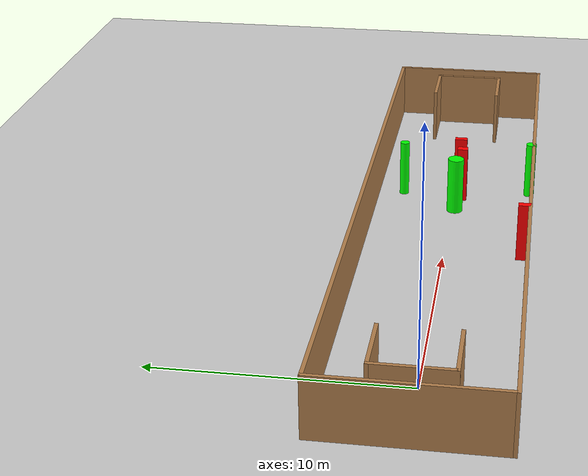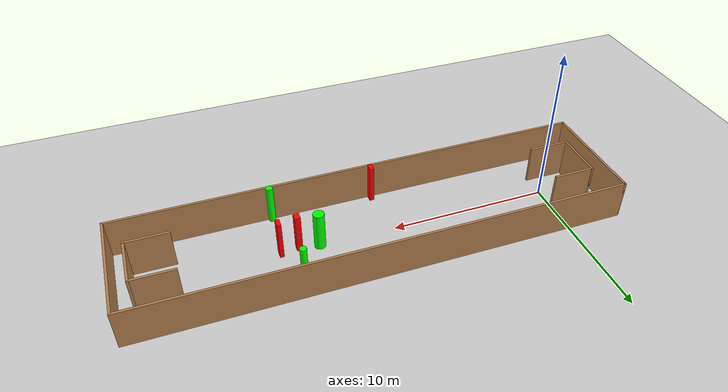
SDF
<sdf version="1.7">
 <world name="default">
  <light name="sun" type="directional">
   <pose>0 0 10 0 -0 0</pose>
   <diffuse>0.8 0.8 0.8 1</diffuse>
   <specular>0.2 0.2 0.2 1</specular>
   <attenuation>
    <range>1000</range>
    <constant>0.9</constant>
    <linear>0.01</linear>
    <quadratic>0.001</quadratic>
   </attenuation>
   <direction>-0.5 0.1 -0.9</direction>
   <spot><inner_angle>0</inner_angle><outer_angle>0</outer_angle><falloff>0</falloff></spot>
  </light>
  <model name="ground_plane">
   <static>1</static>
   <link name="link">
    <collision name="collision">
     <geometry><plane><normal>0 0 1</normal><size>100 100</size></plane></geometry>
     <surface>
      <contact><collide_bitmask>65535</collide_bitmask></contact>
      <friction><ode><mu>100</mu><mu2>50</mu2></ode></friction>
     </surface>
    </collision>
    <visual name="visual">
     <cast_shadows>0</cast_shadows>
     <geometry><plane><normal>0 0 1</normal><size>100 100</size></plane></geometry>
     <material>
      <script><uri>file://media/materials/scripts/gazebo.material</uri><name>Gazebo/Grey</name></script>
     </material>
    </visual>
   </link>
  </model>
  <gravity>0 0 -9.8</gravity>
  <magnetic_field>6e-06 2.3e-05 -4.2e-05</magnetic_field>
  <atmosphere type="adiabatic"/>
  <physics type="ode">
   <max_step_size>0.001</max_step_size>
   <real_time_factor>1</real_time_factor>
   <real_time_update_rate>1000</real_time_update_rate>
  </physics>
  <scene><ambient>0.4 0.4 0.4 1</ambient><background>0.7 0.7 0.7 1</background><shadows>1</shadows></scene>
  <spherical_coordinates>
   <surface_model>EARTH_WGS84</surface_model>
   <latitude_deg>0</latitude_deg>
   <longitude_deg>0</longitude_deg>
   <elevation>0</elevation>
   <heading_deg>0</heading_deg>
  </spherical_coordinates>
  <model name="my_base_walls">
   <link name="Wall_0">
    <collision name="Wall_0_Collision">
     <geometry><box><size>7.15 0.15 2.5</size></box></geometry>
     <pose>0 0 1.25 0 -0 0</pose>
    </collision>
    <visual name="Wall_0_Visual">
     <pose>0 0 1.25 0 -0 0</pose>
     <geometry><box><size>7.15 0.15 2.5</size></box></geometry>
     <material>
      <script><uri>file://media/materials/scripts/gazebo.material</uri><name>Gazebo/Wood</name></script>
      <ambient>1 1 1 1</ambient>
     </material>
     <meta><layer>0</layer></meta>
    </visual>
    <pose>-15 0 0 0 -0 1.5708</pose>
   </link>
   <link name="Wall_10">
    <collision name="Wall_10_Collision">
     <geometry><box><size>2.65 0.15 2.5</size></box></geometry>
     <pose>0 0 1.25 0 -0 0</pose>
    </collision>
    <visual name="Wall_10_Visual">
     <pose>0 0 1.25 0 -0 0</pose>
     <geometry><box><size>2.65 0.15 2.5</size></box></geometry>
     <material>
      <script><uri>file://media/materials/scripts/gazebo.material</uri><name>Gazebo/Wood</name></script>
      <ambient>1 1 1 1</ambient>
     </material>
     <meta><layer>0</layer></meta>
    </visual>
    <pose>-12.75 -1.5 0 0 -0 0</pose>
   </link>
   <link name="Wall_12">
    <collision name="Wall_12_Collision">
     <geometry><box><size>2.65 0.15 2.5</size></box></geometry>
     <pose>0 0 1.25 0 -0 0</pose>
    </collision>
    <visual name="Wall_12_Visual">
     <pose>0 0 1.25 0 -0 0</pose>
     <geometry><box><size>2.65 0.15 2.5</size></box></geometry>
     <material>
      <script><uri>file://media/materials/scripts/gazebo.material</uri><name>Gazebo/Wood</name></script>
      <ambient>1 1 1 1</ambient>
     </material>
     <meta><layer>0</layer></meta>
    </visual>
    <pose>-12.75 1.5 0 0 -0 0</pose>
   </link>
   <link name="Wall_14">
    <collision name="Wall_14_Collision">
     <geometry><box><size>3.15 0.15 2.5</size></box></geometry>
     <pose>0 0 1.25 0 -0 0</pose>
    </collision>
    <visual name="Wall_14_Visual">
     <pose>0 0 1.25 0 -0 0</pose>
     <geometry><box><size>3.15 0.15 2.5</size></box></geometry>
     <material>
      <script><uri>file://media/materials/scripts/gazebo.material</uri><name>Gazebo/Wood</name></script>
      <ambient>1 1 1 1</ambient>
     </material>
     <meta><layer>0</layer></meta>
    </visual>
    <pose>14 0 0 0 -0 -1.5708</pose>
   </link>
   <link name="Wall_15">
    <collision name="Wall_15_Collision">
     <geometry><box><size>2.65 0.15 2.5</size></box></geometry>
     <pose>0 0 1.25 0 -0 0</pose>
    </collision>
    <visual name="Wall_15_Visual">
     <pose>0 0 1.25 0 -0 0</pose>
     <geometry><box><size>2.65 0.15 2.5</size></box></geometry>
     <material>
      <script><uri>file://media/materials/scripts/gazebo.material</uri><name>Gazebo/Wood</name></script>
      <ambient>1 1 1 1</ambient>
     </material>
     <meta><layer>0</layer></meta>
    </visual>
    <pose>12.75 -1.5 0 0 -0 3.14159</pose>
   </link>
   <link name="Wall_17">
    <collision name="Wall_17_Collision">
     <geometry><box><size>2.65 0.15 2.5</size></box></geometry>
     <pose>0 0 1.25 0 -0 0</pose>
    </collision>
    <visual name="Wall_17_Visual">
     <pose>0 0 1.25 0 -0 0</pose>
     <geometry><box><size>2.65 0.15 2.5</size></box></geometry>
     <material>
      <script><uri>file://media/materials/scripts/gazebo.material</uri><name>Gazebo/Wood</name></script>
      <ambient>1 1 1 1</ambient>
     </material>
     <meta><layer>0</layer></meta>
    </visual>
    <pose>12.75 1.5 0 0 -0 3.14159</pose>
   </link>
   <link name="Wall_2">
    <collision name="Wall_2_Collision">
     <geometry><box><size>30.15 0.15 2.5</size></box></geometry>
     <pose>0 0 1.25 0 -0 0</pose>
    </collision>
    <visual name="Wall_2_Visual">
     <pose>0 0 1.25 0 -0 0</pose>
     <geometry><box><size>30.15 0.15 2.5</size></box></geometry>
     <material>
      <script><uri>file://media/materials/scripts/gazebo.material</uri><name>Gazebo/Wood</name></script>
      <ambient>1 1 1 1</ambient>
     </material>
     <meta><layer>0</layer></meta>
    </visual>
    <pose>-0 -3.5 0 0 -0 0</pose>
   </link>
   <link name="Wall_4">
    <collision name="Wall_4_Collision">
     <geometry><box><size>30.15 0.15 2.5</size></box></geometry>
     <pose>0 0 1.25 0 -0 0</pose>
    </collision>
    <visual name="Wall_4_Visual">
     <pose>0 0 1.25 0 -0 0</pose>
     <geometry><box><size>30.15 0.15 2.5</size></box></geometry>
     <material>
      <script><uri>file://media/materials/scripts/gazebo.material</uri><name>Gazebo/Wood</name></script>
      <ambient>1 1 1 1</ambient>
     </material>
     <meta><layer>0</layer></meta>
    </visual>
    <pose>-0 3.5 0 0 -0 0</pose>
   </link>
   <link name="Wall_6">
    <collision name="Wall_6_Collision">
     <geometry><box><size>7.15 0.15 2.5</size></box></geometry>
     <pose>0 0 1.25 0 -0 0</pose>
    </collision>
    <visual name="Wall_6_Visual">
     <pose>0 0 1.25 0 -0 0</pose>
     <geometry><box><size>7.15 0.15 2.5</size></box></geometry>
     <material>
      <script><uri>file://media/materials/scripts/gazebo.material</uri><name>Gazebo/Wood</name></script>
      <ambient>1 1 1 1</ambient>
     </material>
     <meta><layer>0</layer></meta>
    </visual>
    <pose>15 0 0 0 -0 -1.5708</pose>
   </link>
   <link name="Wall_9">
    <collision name="Wall_9_Collision">
     <geometry><box><size>3.15 0.15 2.5</size></box></geometry>
     <pose>0 0 1.25 0 -0 0</pose>
    </collision>
    <visual name="Wall_9_Visual">
     <pose>0 0 1.25 0 -0 0</pose>
     <geometry><box><size>3.15 0.15 2.5</size></box></geometry>
     <material>
      <script><uri>file://media/materials/scripts/gazebo.material</uri><name>Gazebo/Wood</name></script>
      <ambient>1 1 1 1</ambient>
     </material>
     <meta><layer>0</layer></meta>
    </visual>
    <pose>-14 0 0 0 -0 -1.5708</pose>
   </link>
   <static>1</static>
   <pose>11.5 0 0 0 -0 0</pose>
  </model>
  <model name="cylinder1">
   <static>1</static>
   <link name="link">
    <inertial>
     <mass>1</mass>
     <inertia><ixx>0.5</ixx><ixy>0</ixy><ixz>0</ixz><iyy>0.5</iyy><iyz>0</iyz><izz>1</izz></inertia>
    </inertial>
    <collision name="collision">
     <geometry><cylinder><radius>0.34758516835304243</radius><length>2.5</length></cylinder></geometry>
    </collision>
    <visual name="visual">
     <geometry><cylinder><radius>0.34758516835304243</radius><length>2.5</length></cylinder></geometry>
     <material>
      <ambient>0 1 0 1</ambient>
      <diffuse>0 1 0 1</diffuse>
      <specular>0.1 0.1 0.1 1</specular>
      <emissive>0 0 0 0</emissive>
     </material>
    </visual>
   </link>
   <pose>14.729074441941448 -0.13380332849077714 1.25 0 0 0</pose>
  </model>
  <model name="cylinder2">
   <static>1</static>
   <link name="link">
    <inertial>
     <mass>1</mass>
     <inertia><ixx>0.5</ixx><ixy>0</ixy><ixz>0</ixz><iyy>0.5</iyy><iyz>0</iyz><izz>1</izz></inertia>
    </inertial>
    <collision name="collision">
     <geometry><cylinder><radius>0.22268506019365977</radius><length>2.5</length></cylinder></geometry>
    </collision>
    <visual name="visual">
     <geometry><cylinder><radius>0.22268506019365977</radius><length>2.5</length></cylinder></geometry>
     <material>
      <ambient>0 1 0 1</ambient>
      <diffuse>0 1 0 1</diffuse>
      <specular>0.1 0.1 0.1 1</specular>
      <emissive>0 0 0 0</emissive>
     </material>
    </visual>
   </link>
   <pose>16.856639026901334 -3.3800767153645586 1.25 0 0 0</pose>
  </model>
  <model name="cylinder3">
   <static>1</static>
   <link name="link">
    <inertial>
     <mass>1</mass>
     <inertia><ixx>0.5</ixx><ixy>0</ixy><ixz>0</ixz><iyy>0.5</iyy><iyz>0</iyz><izz>1</izz></inertia>
    </inertial>
    <collision name="collision">
     <geometry><cylinder><radius>0.2049648760522799</radius><length>2.5</length></cylinder></geometry>
    </collision>
    <visual name="visual">
     <geometry><cylinder><radius>0.2049648760522799</radius><length>2.5</length></cylinder></geometry>
     <material>
      <ambient>0 1 0 1</ambient>
      <diffuse>0 1 0 1</diffuse>
      <specular>0.1 0.1 0.1 1</specular>
      <emissive>0 0 0 0</emissive>
     </material>
    </visual>
   </link>
   <pose>16.305528475135667 2.3009287845299102 1.25 0 0 0</pose>
  </model>
  <model name="box1">
   <static>1</static>
   <link name="link">
    <inertial>
     <mass>1</mass>
     <inertia><ixx>0.083</ixx><ixy>0</ixy><ixz>0</ixz><iyy>0.083</iyy><iyz>0</iyz><izz>0.083</izz></inertia>
    </inertial>
    <collision name="collision">
     <geometry><box><size>0.2949059549842649 0.519116523350687 2.5</size></box></geometry>
    </collision>
    <visual name="visual">
     <geometry><box><size>0.2949059549842649 0.519116523350687 2.5</size></box></geometry>
     <material>
      <ambient>1 0 0 1</ambient>
      <diffuse>1 0 0 1</diffuse>
      <specular>0.1 0.1 0.1 1</specular>
      <emissive>0 0 0 0</emissive>
     </material>
    </visual>
    <sensor name="my_contact" type="contact">
     <contact><collision>box_collision</collision><topic>__default_topic__</topic></contact>
    </sensor>
   </link>
   <pose>10.419603867245252 -3.269343047286985 1.25 0 0 0</pose>
  </model>
  <model name="box2">
   <static>1</static>
   <link name="link">
    <inertial>
     <mass>1</mass>
     <inertia><ixx>0.083</ixx><ixy>0</ixy><ixz>0</ixz><iyy>0.083</iyy><iyz>0</iyz><izz>0.083</izz></inertia>
    </inertial>
    <collision name="collision">
     <geometry><box><size>0.34876112813668714 0.4590473481131126 2.5</size></box></geometry>
    </collision>
    <visual name="visual">
     <geometry><box><size>0.34876112813668714 0.4590473481131126 2.5</size></box></geometry>
     <material>
      <ambient>1 0 0 1</ambient>
      <diffuse>1 0 0 1</diffuse>
      <specular>0.1 0.1 0.1 1</specular>
      <emissive>0 0 0 0</emissive>
     </material>
    </visual>
    <sensor name="my_contact" type="contact">
     <contact><collision>box_collision</collision><topic>__default_topic__</topic></contact>
    </sensor>
   </link>
   <pose>15.962553911685474 -0.3457049799043892 1.25 0 0 0</pose>
  </model>
  <model name="box3">
   <static>1</static>
   <link name="link">
    <inertial>
     <mass>1</mass>
     <inertia><ixx>0.083</ixx><ixy>0</ixy><ixz>0</ixz><iyy>0.083</iyy><iyz>0</iyz><izz>0.083</izz></inertia>
    </inertial>
    <collision name="collision">
     <geometry><box><size>0.2556918288046065 0.5435147425124416 2.5</size></box></geometry>
    </collision>
    <visual name="visual">
     <geometry><box><size>0.2556918288046065 0.5435147425124416 2.5</size></box></geometry>
     <material>
      <ambient>1 0 0 1</ambient>
      <diffuse>1 0 0 1</diffuse>
      <specular>0.1 0.1 0.1 1</specular>
      <emissive>0 0 0 0</emissive>
     </material>
    </visual>
    <sensor name="my_contact" type="contact">
     <contact><collision>box_collision</collision><topic>__default_topic__</topic></contact>
    </sensor>
   </link>
   <pose>17.09827962205867 -0.19741007357237716 1.25 0 0 0</pose>
  </model>
 </world>
</sdf>
